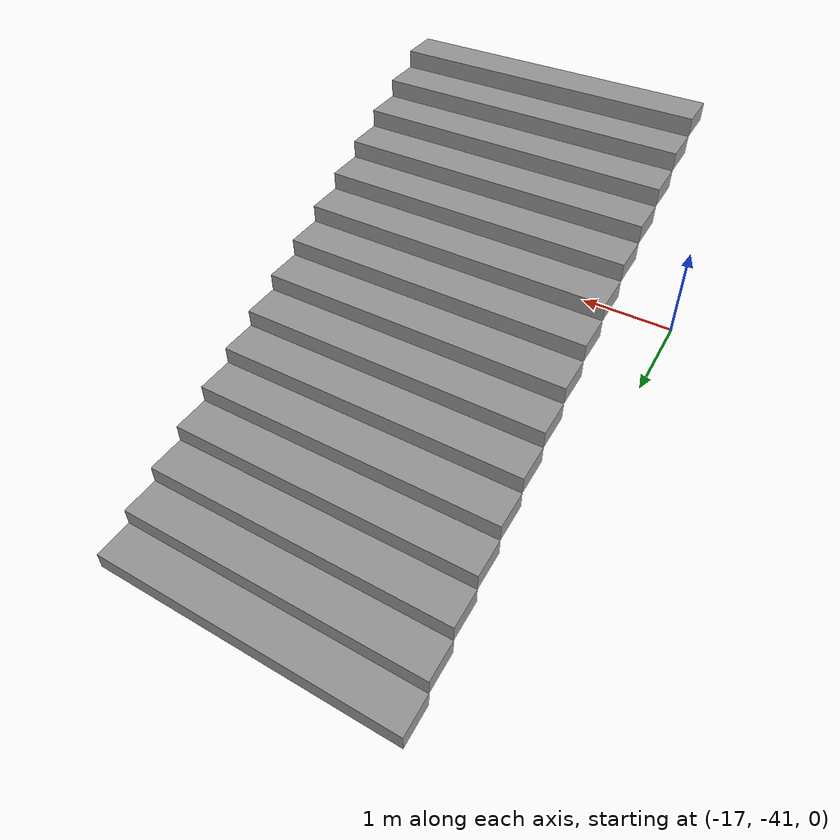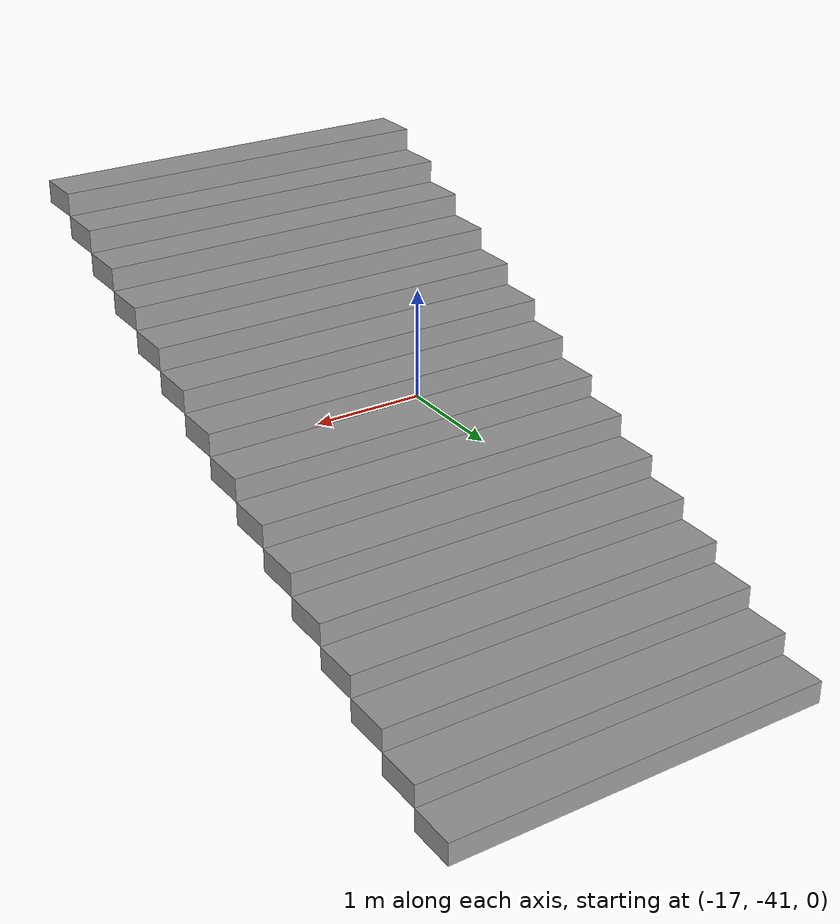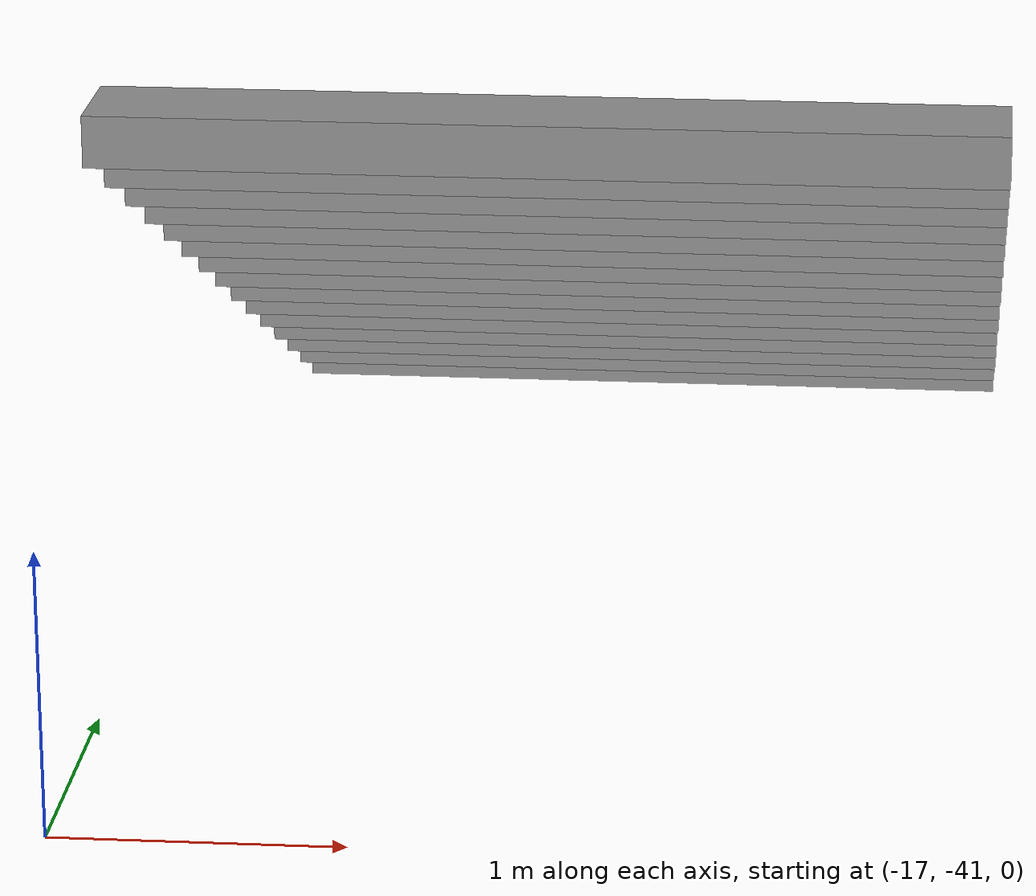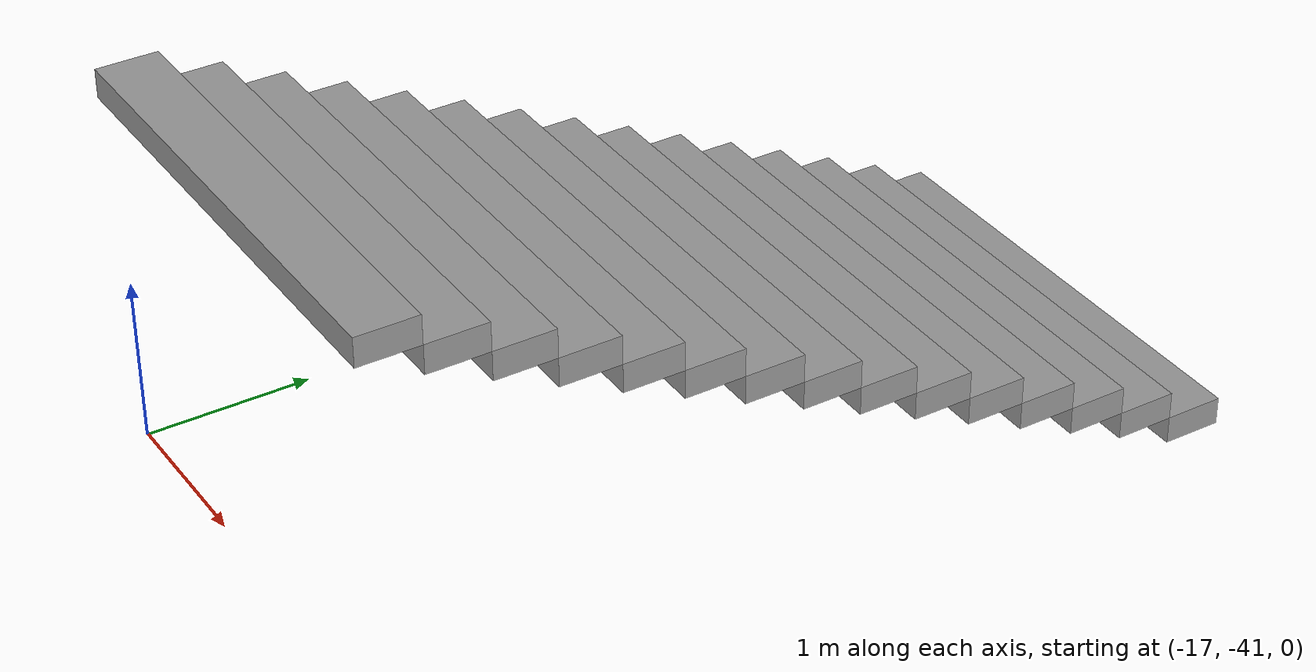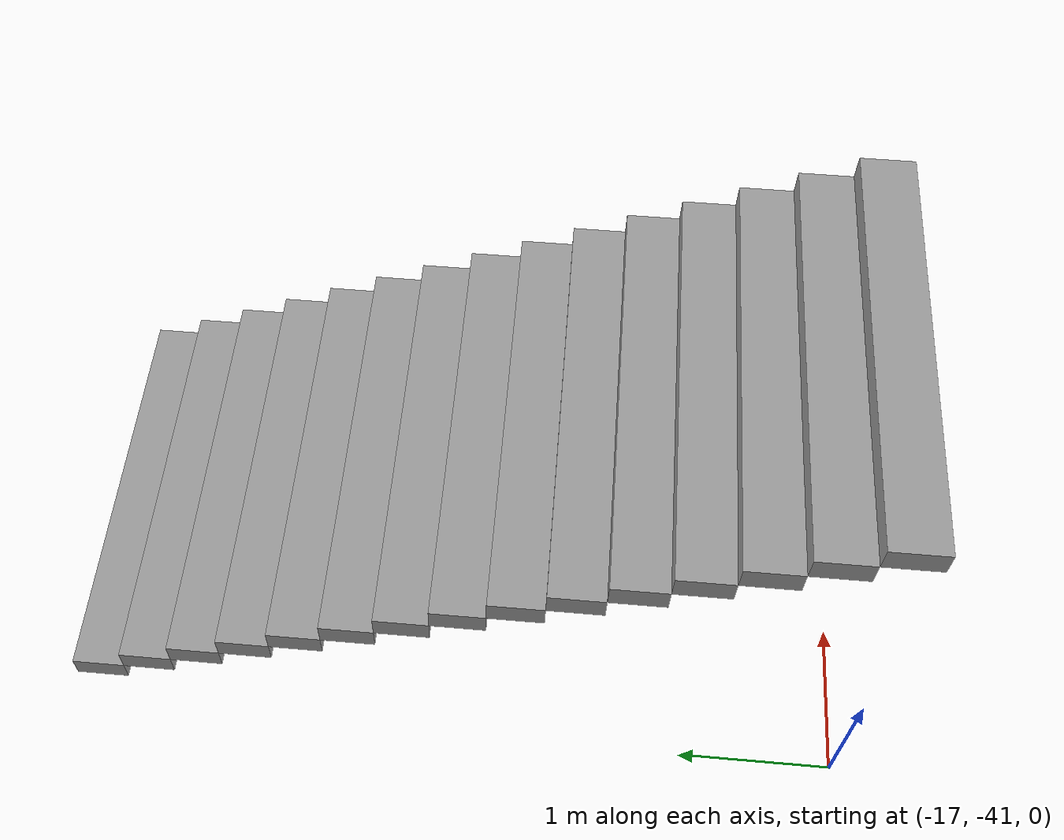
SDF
<sdf version="1.6">
 <model name="car_parking_underground_big_1">
  <pose>-9.36123 -7.37411 0 0 -0 0</pose>
  <link name="Stairs_6">
   <visual name="Stairs_6_Visual_0">
    <pose>-5.97668 -28.6723 0.083333 0 -0 0</pose>
    <geometry><box><size>2.85487 0.352142 0.166667</size></box></geometry>
    <material>
     <script><uri>file://media/materials/scripts/gazebo.material</uri><name>Gazebo/Grey</name></script>
     <ambient>1 1 1 1</ambient>
    </material>
    <meta><layer>0</layer></meta>
   </visual>
   <collision name="Stairs_6_Collision_0">
    <geometry><box><size>2.85487 0.352142 0.166667</size></box></geometry>
    <pose>-5.97668 -28.6723 0.083333 0 -0 0</pose>
   </collision>
   <visual name="Stairs_6_Visual_1">
    <pose>-5.97668 -29.0245 0.25 0 -0 0</pose>
    <geometry><box><size>2.85487 0.352142 0.166667</size></box></geometry>
    <material>
     <script><uri>file://media/materials/scripts/gazebo.material</uri><name>Gazebo/Grey</name></script>
     <ambient>1 1 1 1</ambient>
    </material>
    <meta><layer>0</layer></meta>
   </visual>
   <collision name="Stairs_6_Collision_1">
    <geometry><box><size>2.85487 0.352142 0.166667</size></box></geometry>
    <pose>-5.97668 -29.0245 0.25 0 -0 0</pose>
   </collision>
   <visual name="Stairs_6_Visual_2">
    <pose>-5.97668 -29.3766 0.416667 0 -0 0</pose>
    <geometry><box><size>2.85487 0.352142 0.166667</size></box></geometry>
    <material>
     <script><uri>file://media/materials/scripts/gazebo.material</uri><name>Gazebo/Grey</name></script>
     <ambient>1 1 1 1</ambient>
    </material>
    <meta><layer>0</layer></meta>
   </visual>
   <collision name="Stairs_6_Collision_2">
    <geometry><box><size>2.85487 0.352142 0.166667</size></box></geometry>
    <pose>-5.97668 -29.3766 0.416667 0 -0 0</pose>
   </collision>
   <visual name="Stairs_6_Visual_3">
    <pose>-5.97668 -29.7288 0.583333 0 -0 0</pose>
    <geometry><box><size>2.85487 0.352142 0.166667</size></box></geometry>
    <material>
     <script><uri>file://media/materials/scripts/gazebo.material</uri><name>Gazebo/Grey</name></script>
     <ambient>1 1 1 1</ambient>
    </material>
    <meta><layer>0</layer></meta>
   </visual>
   <collision name="Stairs_6_Collision_3">
    <geometry><box><size>2.85487 0.352142 0.166667</size></box></geometry>
    <pose>-5.97668 -29.7288 0.583333 0 -0 0</pose>
   </collision>
   <visual name="Stairs_6_Visual_4">
    <pose>-5.97668 -30.0809 0.75 0 -0 0</pose>
    <geometry><box><size>2.85487 0.352142 0.166667</size></box></geometry>
    <material>
     <script><uri>file://media/materials/scripts/gazebo.material</uri><name>Gazebo/Grey</name></script>
     <ambient>1 1 1 1</ambient>
    </material>
    <meta><layer>0</layer></meta>
   </visual>
   <collision name="Stairs_6_Collision_4">
    <geometry><box><size>2.85487 0.352142 0.166667</size></box></geometry>
    <pose>-5.97668 -30.0809 0.75 0 -0 0</pose>
   </collision>
   <visual name="Stairs_6_Visual_5">
    <pose>-5.97668 -30.433 0.916667 0 -0 0</pose>
    <geometry><box><size>2.85487 0.352142 0.166667</size></box></geometry>
    <material>
     <script><uri>file://media/materials/scripts/gazebo.material</uri><name>Gazebo/Grey</name></script>
     <ambient>1 1 1 1</ambient>
    </material>
    <meta><layer>0</layer></meta>
   </visual>
   <collision name="Stairs_6_Collision_5">
    <geometry><box><size>2.85487 0.352142 0.166667</size></box></geometry>
    <pose>-5.97668 -30.433 0.916667 0 -0 0</pose>
   </collision>
   <visual name="Stairs_6_Visual_6">
    <pose>-5.97668 -30.7852 1.08333 0 -0 0</pose>
    <geometry><box><size>2.85487 0.352142 0.166667</size></box></geometry>
    <material>
     <script><uri>file://media/materials/scripts/gazebo.material</uri><name>Gazebo/Grey</name></script>
     <ambient>1 1 1 1</ambient>
    </material>
    <meta><layer>0</layer></meta>
   </visual>
   <collision name="Stairs_6_Collision_6">
    <geometry><box><size>2.85487 0.352142 0.166667</size></box></geometry>
    <pose>-5.97668 -30.7852 1.08333 0 -0 0</pose>
   </collision>
   <visual name="Stairs_6_Visual_7">
    <pose>-5.97668 -31.1373 1.25 0 -0 0</pose>
    <geometry><box><size>2.85487 0.352142 0.166667</size></box></geometry>
    <material>
     <script><uri>file://media/materials/scripts/gazebo.material</uri><name>Gazebo/Grey</name></script>
     <ambient>1 1 1 1</ambient>
    </material>
    <meta><layer>0</layer></meta>
   </visual>
   <collision name="Stairs_6_Collision_7">
    <geometry><box><size>2.85487 0.352142 0.166667</size></box></geometry>
    <pose>-5.97668 -31.1373 1.25 0 -0 0</pose>
   </collision>
   <visual name="Stairs_6_Visual_8">
    <pose>-5.97668 -31.4895 1.41667 0 -0 0</pose>
    <geometry><box><size>2.85487 0.352142 0.166667</size></box></geometry>
    <material>
     <script><uri>file://media/materials/scripts/gazebo.material</uri><name>Gazebo/Grey</name></script>
     <ambient>1 1 1 1</ambient>
    </material>
    <meta><layer>0</layer></meta>
   </visual>
   <collision name="Stairs_6_Collision_8">
    <geometry><box><size>2.85487 0.352142 0.166667</size></box></geometry>
    <pose>-5.97668 -31.4895 1.41667 0 -0 0</pose>
   </collision>
   <visual name="Stairs_6_Visual_9">
    <pose>-5.97668 -31.8416 1.58333 0 -0 0</pose>
    <geometry><box><size>2.85487 0.352142 0.166667</size></box></geometry>
    <material>
     <script><uri>file://media/materials/scripts/gazebo.material</uri><name>Gazebo/Grey</name></script>
     <ambient>1 1 1 1</ambient>
    </material>
    <meta><layer>0</layer></meta>
   </visual>
   <collision name="Stairs_6_Collision_9">
    <geometry><box><size>2.85487 0.352142 0.166667</size></box></geometry>
    <pose>-5.97668 -31.8416 1.58333 0 -0 0</pose>
   </collision>
   <visual name="Stairs_6_Visual_10">
    <pose>-5.97668 -32.1938 1.75 0 -0 0</pose>
    <geometry><box><size>2.85487 0.352142 0.166667</size></box></geometry>
    <material>
     <script><uri>file://media/materials/scripts/gazebo.material</uri><name>Gazebo/Grey</name></script>
     <ambient>1 1 1 1</ambient>
    </material>
    <meta><layer>0</layer></meta>
   </visual>
   <collision name="Stairs_6_Collision_10">
    <geometry><box><size>2.85487 0.352142 0.166667</size></box></geometry>
    <pose>-5.97668 -32.1938 1.75 0 -0 0</pose>
   </collision>
   <visual name="Stairs_6_Visual_11">
    <pose>-5.97668 -32.5459 1.91667 0 -0 0</pose>
    <geometry><box><size>2.85487 0.352142 0.166667</size></box></geometry>
    <material>
     <script><uri>file://media/materials/scripts/gazebo.material</uri><name>Gazebo/Grey</name></script>
     <ambient>1 1 1 1</ambient>
    </material>
    <meta><layer>0</layer></meta>
   </visual>
   <collision name="Stairs_6_Collision_11">
    <geometry><box><size>2.85487 0.352142 0.166667</size></box></geometry>
    <pose>-5.97668 -32.5459 1.91667 0 -0 0</pose>
   </collision>
   <visual name="Stairs_6_Visual_12">
    <pose>-5.97668 -32.898 2.08333 0 -0 0</pose>
    <geometry><box><size>2.85487 0.352142 0.166667</size></box></geometry>
    <material>
     <script><uri>file://media/materials/scripts/gazebo.material</uri><name>Gazebo/Grey</name></script>
     <ambient>1 1 1 1</ambient>
    </material>
    <meta><layer>0</layer></meta>
   </visual>
   <collision name="Stairs_6_Collision_12">
    <geometry><box><size>2.85487 0.352142 0.166667</size></box></geometry>
    <pose>-5.97668 -32.898 2.08333 0 -0 0</pose>
   </collision>
   <visual name="Stairs_6_Visual_13">
    <pose>-5.97668 -33.2502 2.25 0 -0 0</pose>
    <geometry><box><size>2.85487 0.352142 0.166667</size></box></geometry>
    <material>
     <script><uri>file://media/materials/scripts/gazebo.material</uri><name>Gazebo/Grey</name></script>
     <ambient>1 1 1 1</ambient>
    </material>
    <meta><layer>0</layer></meta>
   </visual>
   <collision name="Stairs_6_Collision_13">
    <geometry><box><size>2.85487 0.352142 0.166667</size></box></geometry>
    <pose>-5.97668 -33.2502 2.25 0 -0 0</pose>
   </collision>
   <visual name="Stairs_6_Visual_14">
    <pose>-5.97668 -33.6023 2.41667 0 -0 0</pose>
    <geometry><box><size>2.85487 0.352142 0.166667</size></box></geometry>
    <material>
     <script><uri>file://media/materials/scripts/gazebo.material</uri><name>Gazebo/Grey</name></script>
     <ambient>1 1 1 1</ambient>
    </material>
    <meta><layer>0</layer></meta>
   </visual>
   <collision name="Stairs_6_Collision_14">
    <geometry><box><size>2.85487 0.352142 0.166667</size></box></geometry>
    <pose>-5.97668 -33.6023 2.41667 0 -0 0</pose>
   </collision>
  </link>
  <static>1</static>
 </model>
</sdf>
